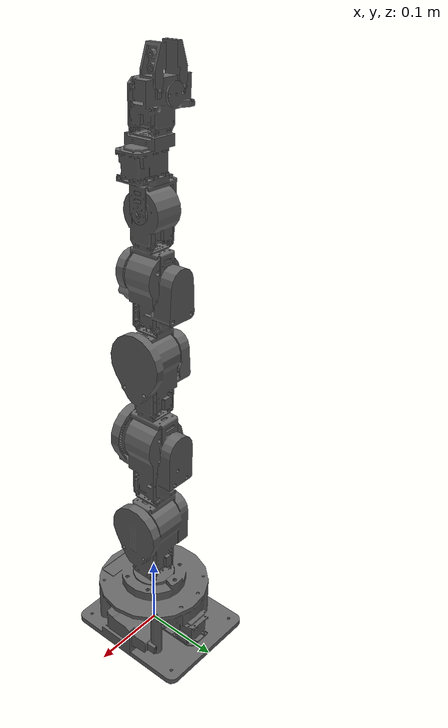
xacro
<?xml version="1.0"?>
<robot xmlns:xacro="http://www.ros.org/wiki/xacro" name="cyton_gamma_1500">
  <xacro:include filename="$(find cyton_gamma_1500_description)/cyton_gamma_1500_macros.urdf.xacro" />

  <xacro:base_footprint prefix="" />
  <xacro:cyton_gamma_1500 prefix="" virtual_ee="true" />
</robot>

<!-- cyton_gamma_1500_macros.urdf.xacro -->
<robot xmlns:xacro="http://www.ros.org/wiki/xacro" name="cyton_gamma_1500">

  <xacro:macro name="base_footprint" params="prefix">
    <link name="base_footprint">
      <visual>
        <origin xyz="0 0 0" rpy="0 0 0"/>
        <geometry>
          <sphere radius="0.001" />
        </geometry>
        <material name="white">
          <color rgba="1 1 1 1"/>
        </material>
      </visual>
    </link>

    <joint name="base_joint" type="fixed">
      <parent link="base_footprint" />
      <child link="${prefix}base_link" />
      <origin xyz="0.0 0.0 0.0" rpy="0 0 0" />
    </joint>
  </xacro:macro>

  <xacro:macro name="cyton_gamma_1500" params="prefix virtual_ee">
    <link name="${prefix}base_link">
      <visual>
        <origin xyz="0 0 0" rpy="0 0 0"/>
        <geometry>
          <mesh filename="package://cyton_gamma_1500_description/meshes/base.dae"/>
        </geometry>
      </visual>
      <collision>
        <origin xyz="0 0.0115 0.047"/>
        <geometry>
          <box size="0.154 0.177 0.094"/>
        </geometry>
      </collision>
    </link>

    <joint name="${prefix}shoulder_roll_joint" type="revolute">
      <parent link="${prefix}base_link" />
      <child link="${prefix}shoulder_roll" />
      <origin xyz="0 0 0.05315" rpy="0 0 0" />
      <limit lower="-2.618" upper="2.618" effort="100.0" velocity="1.0" />
      <axis xyz="0 0 1" />
    </joint>

    <link name="${prefix}shoulder_roll">
      <visual>
        <origin xyz="0 0 0" rpy="1.5708 0 0.384"/>
        <geometry>
          <mesh filename="package://cyton_gamma_1500_description/meshes/shoulder_roll.dae"/>
        </geometry>
      </visual>
      <collision>
        <origin xyz="0.0 0.069 0.0587"/>
        <geometry>
          <box size="0.09829 0.18143 0.08392"/>
        </geometry>
      </collision>
    </link>

    <joint name="${prefix}shoulder_pitch_joint" type="revolute">
      <parent link="${prefix}shoulder_roll" />
      <child link="${prefix}shoulder_pitch" />
      <origin xyz="0.0205 0 0.12435" rpy="0 0 0" />
      <limit lower="-1.8326" upper="1.8326" effort="100.0" velocity="1.0" />
      <axis xyz="1 0 0" />
    </joint>

    <link name="${prefix}shoulder_pitch">
      <visual>
        <origin xyz="0 0 0" rpy="1.5708 0 0" />
        <geometry>
          <mesh filename="package://cyton_gamma_1500_description/meshes/shoulder_pitch.dae"/>
        </geometry>
      </visual>
      <collision>
        <origin xyz="-0.001 0.064 0.1745"/>
        <geometry>
          <box size="0.0709 0.19363 0.083"/>
        </geometry>
      </collision>
    </link>

    <joint name="${prefix}shoulder_yaw_joint" type="revolute">
      <parent link="${prefix}shoulder_pitch" />
      <child link="${prefix}shoulder_yaw" />
      <origin xyz="-0.0215 -0.0205 0.1255" rpy="0 0 0" />
      <limit lower="-1.8326" upper="1.8326" effort="100.0" velocity="1.0" />
      <axis xyz="0 -1 0" />
    </joint>

    <link name="${prefix}shoulder_yaw">
      <visual>
        <origin xyz="0 0 0.0" rpy="1.5708 0 -1.5708" />
        <geometry>
          <mesh filename="package://cyton_gamma_1500_description/meshes/shoulder_yaw.dae"/>
        </geometry>
      </visual>
      <collision>
        <origin xyz="-0.0225 0.039 0.3068"/>
        <geometry>
          <box size="0.0717 0.1846 0.0756"/>
        </geometry>
      </collision>
    </link>

    <joint name="${prefix}elbow_pitch_joint" type="revolute">
      <parent link="${prefix}shoulder_yaw" />
      <child link="${prefix}elbow_pitch" />
      <origin xyz="0.018 0.0206 0.1158" rpy="0 0 0" />
      <limit lower="-1.8326" upper="1.8326" effort="100.0" velocity="1.0" />
      <axis xyz="1 0 0" />
    </joint>

    <link name="${prefix}elbow_pitch">
      <visual>
        <origin xyz="0 0 0" rpy="1.5708 0 3.1416" />
        <geometry>
          <mesh filename="package://cyton_gamma_1500_description/meshes/elbow_pitch.dae"/>
        </geometry>
      </visual>
      <collision>
        <origin xyz="0.0346 0.0461 0.4228"/>
        <geometry>
          <box size="0.0549 0.1557 0.076"/>
        </geometry>
      </collision>
    </link>

    <joint name="${prefix}elbow_yaw_joint" type="revolute">
      <parent link="${prefix}elbow_pitch" />
      <child link="${prefix}elbow_yaw" />
      <origin xyz="-0.0171 -0.018 0.09746" rpy="0 0 0" />
      <limit lower="-1.8326" upper="1.8326" effort="100.0" velocity="1.0" />
      <axis xyz="0 -1 0" />
    </joint>

    <link name="${prefix}elbow_yaw">
      <visual>
        <origin xyz="0 0 0" rpy="1.5708 0 1.5708" />
        <geometry>
          <mesh filename="package://cyton_gamma_1500_description/meshes/elbow_yaw.dae"/>
        </geometry>
      </visual>
      <collision>
        <origin xyz="0.0172 0.0209 0.516"/>
        <geometry>
          <box size="0.0535 0.1160 0.0402"/>
        </geometry>
      </collision>
    </link>

    <joint name="${prefix}wrist_pitch_joint" type="revolute">
      <parent link="${prefix}elbow_yaw" />
      <child link="${prefix}wrist_pitch" />
      <origin xyz="0.02626 0.018 0.0718" rpy="0 0 0" />
      <limit lower="-1.8326" upper="1.8326" effort="100.0" velocity="1.0" />
      <axis xyz="1 0 0" />
    </joint>

    <link name="${prefix}wrist_pitch">
      <visual>
        <origin xyz="0 0 0" rpy="1.5708 0 1.5708" />
        <geometry>
          <mesh filename="package://cyton_gamma_1500_description/meshes/wrist_pitch.dae"/>
        </geometry>
      </visual>
      <collision>
        <origin xyz="0.0257 0.0118 0.5617"/>
        <geometry>
          <box size="0.026 0.0435 0.05185"/>
        </geometry>
      </collision>
    </link>

    <joint name="${prefix}wrist_roll_joint" type="revolute">
      <parent link="${prefix}wrist_pitch" />
      <child link="${prefix}wrist_roll" />
      <origin xyz="-0.026255 0 0.051425" rpy="0 0 0" />
      <limit lower="-2.61799" upper="2.61799" effort="100.0" velocity="1.0" />
      <axis xyz="0 0 1" />
    </joint>

    <link name="${prefix}wrist_roll">
      <visual>
        <origin xyz="0 0 0" rpy="3.1416 0 -1.5708" />
        <geometry>
          <mesh filename="package://cyton_gamma_1500_description/meshes/wrist_roll.dae"/>
        </geometry>
      </visual>
      <collision>
        <origin xyz="-0.0063 -0.0014 0.6102"/>
        <geometry>
          <box size="0.0518 0.0723 0.1004"/>
        </geometry>
      </collision>
    </link>

    <joint name="${prefix}gripper_joint" type="prismatic">
      <parent link="${prefix}wrist_roll" />
      <child link="${prefix}gripper_finger1" />
      <origin xyz="-0.01331 0.00485 0.077225" rpy="0 0 0" />
      <limit lower="-0.008" upper="0.008" effort="100.0" velocity="1.0" />
      <axis xyz="1 0 0" />
    </joint>

    <link name="${prefix}gripper_finger1">
      <visual>
        <origin xyz="0 0 0" rpy="0 0 0" />
        <geometry>
          <mesh filename="package://cyton_gamma_1500_description/meshes/gripper_finger1.dae"/>
        </geometry>
      </visual>
      <collision>
        <origin xyz="-0.0167 0.0172 0.7254"/>
        <geometry>
          <box size="0.015 0.0229 0.0475"/>
        </geometry>
      </collision>
    </link>

    <joint name="${prefix}gripper_joint2" type="prismatic">
      <parent link="${prefix}wrist_roll" />
      <child link="${prefix}gripper_finger2" />
      <origin xyz="0.0098 0.00485 0.077225" rpy="0 0 0" />
      <limit lower="-0.008" upper="0.008" effort="100.0" velocity="1.0" />
      <mimic joint="${prefix}gripper_joint" multiplier="-1"/>
      <axis xyz="1 0 0" />
    </joint>

    <link name="${prefix}gripper_finger2">
      <visual>
        <origin xyz="0 0 0" rpy="0 0 0" />
        <geometry>
          <mesh filename="package://cyton_gamma_1500_description/meshes/gripper_finger2.dae"/>
        </geometry>
      </visual>
      <collision>
        <origin xyz="0.0132 0.0172 0.7254"/>
        <geometry>
          <box size="0.015 0.0229 0.0475"/>
        </geometry>
      </collision>
    </link>

    <xacro:if value="${virtual_ee}"> <!-- virtual end-effector -->
      <joint name="${prefix}virtual_endeffector_joint" type="fixed">
        <parent link="${prefix}wrist_roll" />
        <child link="${prefix}virtual_endeffector" />
        <origin xyz="-0.002316 0.0079 0.079425" rpy="0 0 0" />
      </joint>

      <link name="${prefix}virtual_endeffector">
        <visual>
          <origin xyz="0 0 0" rpy="0 0 0" />
          <geometry>
            <sphere radius="0.002" />
          </geometry>
          <material name="grey">
            <color rgba="0.7 0.7 0.7 0.8" />
          </material>
        </visual>
      </link>
    </xacro:if>
  </xacro:macro>

</robot>
